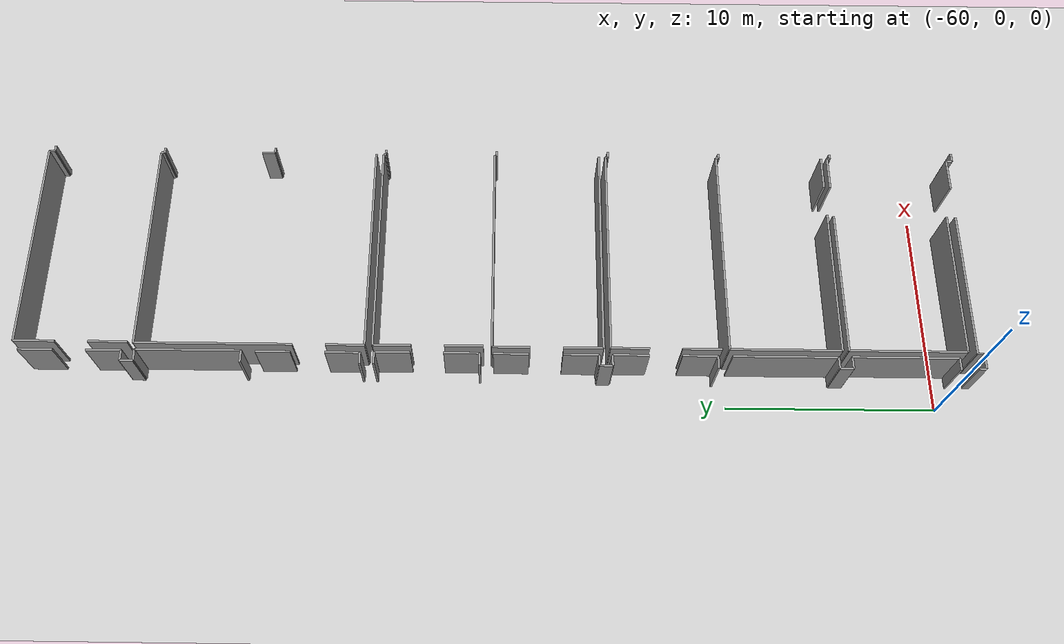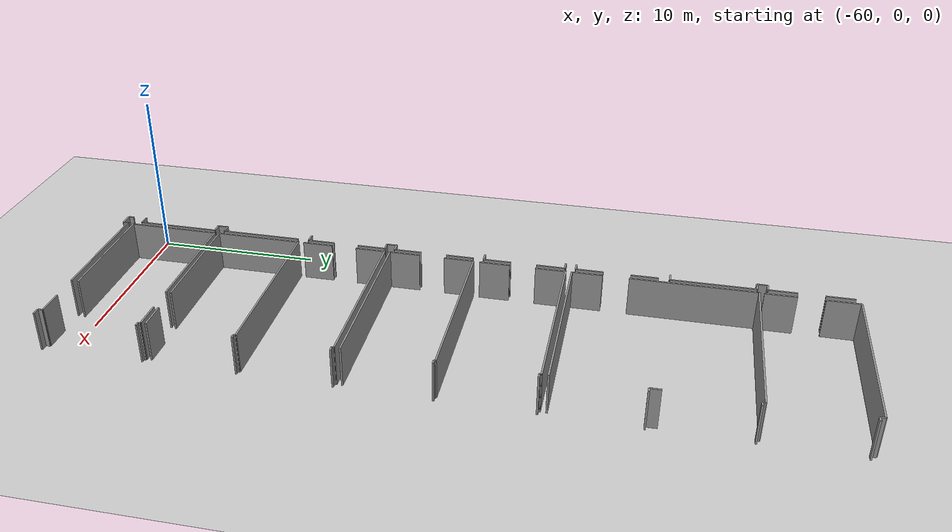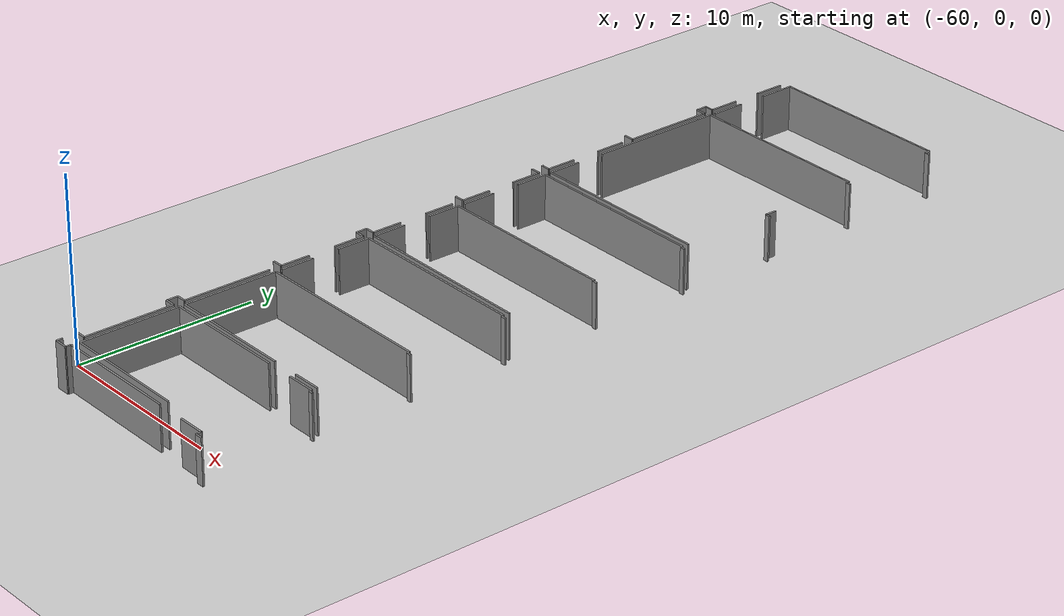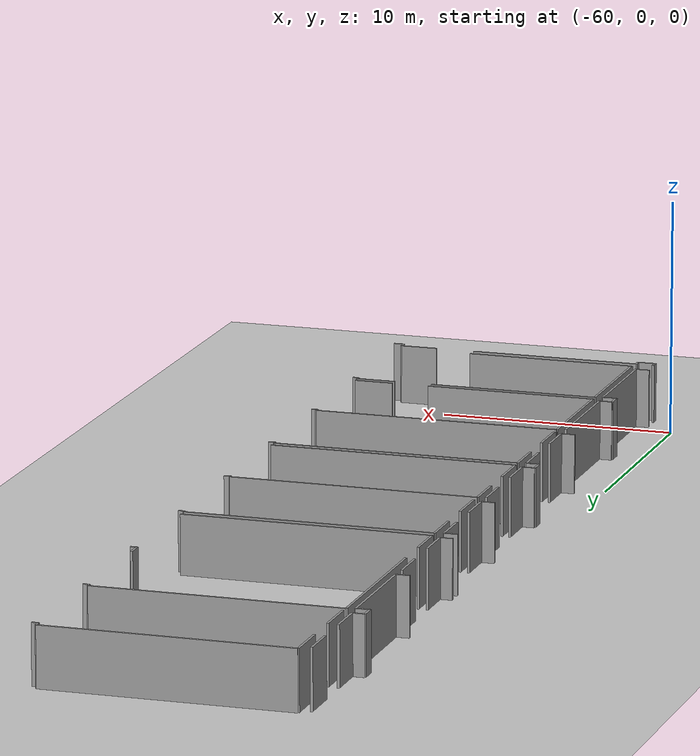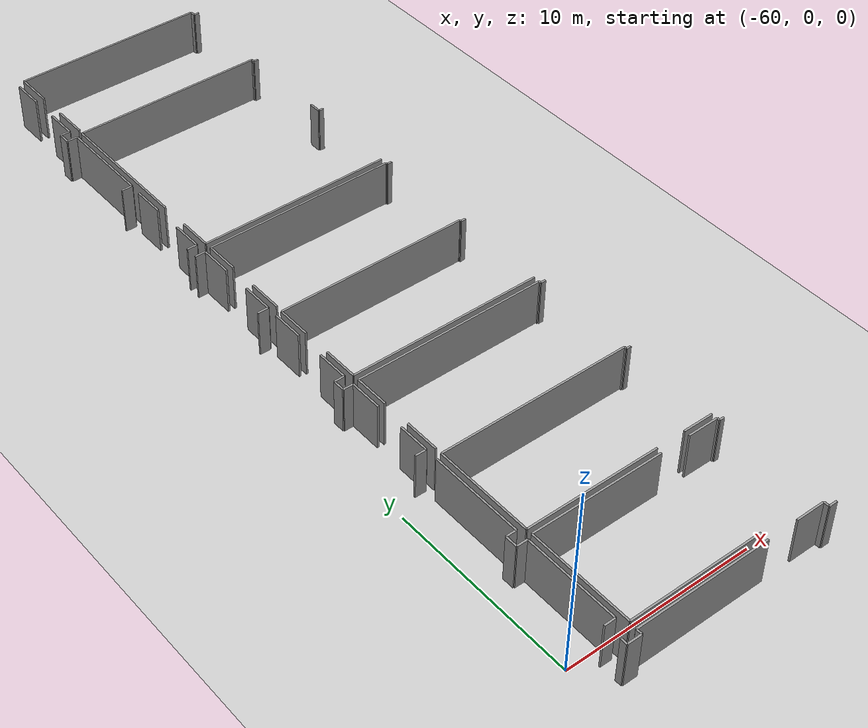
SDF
<sdf version="1.6">
 <world name="default">
  <model name="ground_plane">
   <static>1</static>
   <link name="link">
    <collision name="collision">
     <geometry><plane><normal>0 0 1</normal><size>100 100</size></plane></geometry>
     <surface><friction><ode><mu>100</mu><mu2>50</mu2></ode></friction></surface>
    </collision>
    <visual name="visual">
     <cast_shadows>0</cast_shadows>
     <geometry><plane><normal>0 0 1</normal><size>100 100</size></plane></geometry>
     <material>
      <script><uri>file://media/materials/scripts/gazebo.material</uri><name>Gazebo/Grey</name></script>
     </material>
    </visual>
   </link>
  </model>
  <model name="50015848">
   <static>1</static>
   <link name="Wall_166">
    <collision name="Wall_166_Collision">
     <geometry><box><size>0.342279367456 0.1 2.5</size></box></geometry>
     <pose>0.171139683728 0 1.25 0 0 0</pose>
    </collision>
    <visual name="Wall_166_Visual">
     <pose>0.171139683728 0 1.25 0 0 0</pose>
     <geometry><box><size>0.342279367456 0.1 2.5</size></box></geometry>
     <material>
      <script><uri>file://media/materials/scripts/gazebo.material</uri><name>Gazebo/Grey</name></script>
      <ambient>1 1 1 1</ambient>
     </material>
    </visual>
    <pose>73.0280559978 -45.2625769907 0 0 0 -1.57079632679</pose>
   </link>
   <link name="Wall_167">
    <collision name="Wall_167_Collision">
     <geometry><box><size>0.763468211026 0.1 2.5</size></box></geometry>
     <pose>0.381734105513 0 1.25 0 0 0</pose>
    </collision>
    <visual name="Wall_167_Visual">
     <pose>0.381734105513 0 1.25 0 0 0</pose>
     <geometry><box><size>0.763468211026 0.1 2.5</size></box></geometry>
     <material>
      <script><uri>file://media/materials/scripts/gazebo.material</uri><name>Gazebo/Grey</name></script>
      <ambient>1 1 1 1</ambient>
     </material>
    </visual>
    <pose>73.0280559978 -45.6048563581 0 0 0 0.0</pose>
   </link>
   <link name="Wall_168">
    <collision name="Wall_168_Collision">
     <geometry><box><size>0.303458949946 0.1 2.5</size></box></geometry>
     <pose>0.151729474973 0 1.25 0 0 0</pose>
    </collision>
    <visual name="Wall_168_Visual">
     <pose>0.151729474973 0 1.25 0 0 0</pose>
     <geometry><box><size>0.303458949946 0.1 2.5</size></box></geometry>
     <material>
      <script><uri>file://media/materials/scripts/gazebo.material</uri><name>Gazebo/Grey</name></script>
      <ambient>1 1 1 1</ambient>
     </material>
    </visual>
    <pose>73.7915242088 -45.6048563581 0 0 0 1.57079632679</pose>
   </link>
   <link name="Wall_169">
    <collision name="Wall_169_Collision">
     <geometry><box><size>7.20613514834 0.1 2.5</size></box></geometry>
     <pose>3.60306757417 0 1.25 0 0 0</pose>
    </collision>
    <visual name="Wall_169_Visual">
     <pose>3.60306757417 0 1.25 0 0 0</pose>
     <geometry><box><size>7.20613514834 0.1 2.5</size></box></geometry>
     <material>
      <script><uri>file://media/materials/scripts/gazebo.material</uri><name>Gazebo/Grey</name></script>
      <ambient>1 1 1 1</ambient>
     </material>
    </visual>
    <pose>73.7915242088 -45.3013974082 0 0 0 0.0</pose>
   </link>
   <link name="Wall_170">
    <collision name="Wall_170_Collision">
     <geometry><box><size>1.56423447025 0.1 2.5</size></box></geometry>
     <pose>0.782117235124 0 1.25 0 0 0</pose>
    </collision>
    <visual name="Wall_170_Visual">
     <pose>0.782117235124 0 1.25 0 0 0</pose>
     <geometry><box><size>1.56423447025 0.1 2.5</size></box></geometry>
     <material>
      <script><uri>file://media/materials/scripts/gazebo.material</uri><name>Gazebo/Grey</name></script>
      <ambient>1 1 1 1</ambient>
     </material>
    </visual>
    <pose>82.6392809342 -45.3013974082 0 0 0 0.0</pose>
   </link>
   <link name="Wall_171">
    <collision name="Wall_171_Collision">
     <geometry><box><size>0.291279995433 0.1 2.5</size></box></geometry>
     <pose>0.145639997716 0 1.25 0 0 0</pose>
    </collision>
    <visual name="Wall_171_Visual">
     <pose>0.145639997716 0 1.25 0 0 0</pose>
     <geometry><box><size>0.291279995433 0.1 2.5</size></box></geometry>
     <material>
      <script><uri>file://media/materials/scripts/gazebo.material</uri><name>Gazebo/Grey</name></script>
      <ambient>1 1 1 1</ambient>
     </material>
    </visual>
    <pose>84.2035154045 -45.3013974082 0 0 0 -1.57079632679</pose>
   </link>
   <link name="Wall_172">
    <collision name="Wall_172_Collision">
     <geometry><box><size>0.438949818901 0.1 2.5</size></box></geometry>
     <pose>0.219474909451 0 1.25 0 0 0</pose>
    </collision>
    <visual name="Wall_172_Visual">
     <pose>0.219474909451 0 1.25 0 0 0</pose>
     <geometry><box><size>0.438949818901 0.1 2.5</size></box></geometry>
     <material>
      <script><uri>file://media/materials/scripts/gazebo.material</uri><name>Gazebo/Grey</name></script>
      <ambient>1 1 1 1</ambient>
     </material>
    </visual>
    <pose>84.2035154045 -45.5926774036 0 0 0 0.0</pose>
   </link>
   <link name="Wall_177">
    <collision name="Wall_177_Collision">
     <geometry><box><size>0.59169420675 0.1 2.5</size></box></geometry>
     <pose>0.295847103375 0 1.25 0 0 0</pose>
    </collision>
    <visual name="Wall_177_Visual">
     <pose>0.295847103375 0 1.25 0 0 0</pose>
     <geometry><box><size>0.59169420675 0.1 2.5</size></box></geometry>
     <material>
      <script><uri>file://media/materials/scripts/gazebo.material</uri><name>Gazebo/Grey</name></script>
      <ambient>1 1 1 1</ambient>
     </material>
    </visual>
    <pose>73.5489600315 -44.4285723347 0 0 0 3.14159265359</pose>
   </link>
   <link name="Wall_231">
    <collision name="Wall_231_Collision">
     <geometry><box><size>1.66826304004 0.1 2.5</size></box></geometry>
     <pose>0.834131520022 0 1.25 0 0 0</pose>
    </collision>
    <visual name="Wall_231_Visual">
     <pose>0.834131520022 0 1.25 0 0 0</pose>
     <geometry><box><size>1.66826304004 0.1 2.5</size></box></geometry>
     <material>
      <script><uri>file://media/materials/scripts/gazebo.material</uri><name>Gazebo/Grey</name></script>
      <ambient>1 1 1 1</ambient>
     </material>
    </visual>
    <pose>73.476647489 -0.312846894049 0 0 0 -1.57079632679</pose>
   </link>
   <link name="Wall_232">
    <collision name="Wall_232_Collision">
     <geometry><box><size>1.67485997374 0.1 2.5</size></box></geometry>
     <pose>0.83742998687 0 1.25 0 0 0</pose>
    </collision>
    <visual name="Wall_232_Visual">
     <pose>0.83742998687 0 1.25 0 0 0</pose>
     <geometry><box><size>1.67485997374 0.1 2.5</size></box></geometry>
     <material>
      <script><uri>file://media/materials/scripts/gazebo.material</uri><name>Gazebo/Grey</name></script>
      <ambient>1 1 1 1</ambient>
     </material>
    </visual>
    <pose>73.476647489 -3.52682224435 0 0 0 -1.57079632679</pose>
   </link>
   <link name="Wall_233">
    <collision name="Wall_233_Collision">
     <geometry><box><size>0.507963894474 0.1 2.5</size></box></geometry>
     <pose>0.253981947237 0 1.25 0 0 0</pose>
    </collision>
    <visual name="Wall_233_Visual">
     <pose>0.253981947237 0 1.25 0 0 0</pose>
     <geometry><box><size>0.507963894474 0.1 2.5</size></box></geometry>
     <material>
      <script><uri>file://media/materials/scripts/gazebo.material</uri><name>Gazebo/Grey</name></script>
      <ambient>1 1 1 1</ambient>
     </material>
    </visual>
    <pose>73.476647489 -5.20168221809 0 0 0 3.14159265359</pose>
   </link>
   <link name="Wall_234">
    <collision name="Wall_234_Collision">
     <geometry><box><size>0.623917690566 0.1 2.5</size></box></geometry>
     <pose>0.311958845283 0 1.25 0 0 0</pose>
    </collision>
    <visual name="Wall_234_Visual">
     <pose>0.311958845283 0 1.25 0 0 0</pose>
     <geometry><box><size>0.623917690566 0.1 2.5</size></box></geometry>
     <material>
      <script><uri>file://media/materials/scripts/gazebo.material</uri><name>Gazebo/Grey</name></script>
      <ambient>1 1 1 1</ambient>
     </material>
    </visual>
    <pose>72.9686835946 -5.20168221809 0 0 0 -1.57079632679</pose>
   </link>
   <link name="Wall_235">
    <collision name="Wall_235_Collision">
     <geometry><box><size>0.565813928411 0.1 2.5</size></box></geometry>
     <pose>0.282906964205 0 1.25 0 0 0</pose>
    </collision>
    <visual name="Wall_235_Visual">
     <pose>0.282906964205 0 1.25 0 0 0</pose>
     <geometry><box><size>0.565813928411 0.1 2.5</size></box></geometry>
     <material>
      <script><uri>file://media/materials/scripts/gazebo.material</uri><name>Gazebo/Grey</name></script>
      <ambient>1 1 1 1</ambient>
     </material>
    </visual>
    <pose>72.9686835946 -5.82559990866 0 0 0 0.0</pose>
   </link>
   <link name="Wall_236">
    <collision name="Wall_236_Collision">
     <geometry><box><size>4.99032661165 0.1 2.5</size></box></geometry>
     <pose>2.49516330582 0 1.25 0 0 0</pose>
    </collision>
    <visual name="Wall_236_Visual">
     <pose>2.49516330582 0 1.25 0 0 0</pose>
     <geometry><box><size>4.99032661165 0.1 2.5</size></box></geometry>
     <material>
      <script><uri>file://media/materials/scripts/gazebo.material</uri><name>Gazebo/Grey</name></script>
      <ambient>1 1 1 1</ambient>
     </material>
    </visual>
    <pose>73.534497523 -5.82559990866 0 0 0 -1.57079632679</pose>
   </link>
   <link name="Wall_237">
    <collision name="Wall_237_Collision">
     <geometry><box><size>0.580276436895 0.1 2.5</size></box></geometry>
     <pose>0.290138218447 0 1.25 0 0 0</pose>
    </collision>
    <visual name="Wall_237_Visual">
     <pose>0.290138218447 0 1.25 0 0 0</pose>
     <geometry><box><size>0.580276436895 0.1 2.5</size></box></geometry>
     <material>
      <script><uri>file://media/materials/scripts/gazebo.material</uri><name>Gazebo/Grey</name></script>
      <ambient>1 1 1 1</ambient>
     </material>
    </visual>
    <pose>73.534497523 -10.8159265203 0 0 0 3.14159265359</pose>
   </link>
   <link name="Wall_240">
    <collision name="Wall_240_Collision">
     <geometry><box><size>1.64542750033 0.1 2.5</size></box></geometry>
     <pose>0.822713750167 0 1.25 0 0 0</pose>
    </collision>
    <visual name="Wall_240_Visual">
     <pose>0.822713750167 0 1.25 0 0 0</pose>
     <geometry><box><size>1.64542750033 0.1 2.5</size></box></geometry>
     <material>
      <script><uri>file://media/materials/scripts/gazebo.material</uri><name>Gazebo/Grey</name></script>
      <ambient>1 1 1 1</ambient>
     </material>
    </visual>
    <pose>73.4946621926 -11.4827242799 0 0 0 -1.57079632679</pose>
   </link>
   <link name="Wall_241">
    <collision name="Wall_241_Collision">
     <geometry><box><size>1.65253189047 0.1 2.5</size></box></geometry>
     <pose>0.826265945233 0 1.25 0 0 0</pose>
    </collision>
    <visual name="Wall_241_Visual">
     <pose>0.826265945233 0 1.25 0 0 0</pose>
     <geometry><box><size>1.65253189047 0.1 2.5</size></box></geometry>
     <material>
      <script><uri>file://media/materials/scripts/gazebo.material</uri><name>Gazebo/Grey</name></script>
      <ambient>1 1 1 1</ambient>
     </material>
    </visual>
    <pose>73.4946621926 -14.7423707096 0 0 0 -1.57079632679</pose>
   </link>
   <link name="Wall_242">
    <collision name="Wall_242_Collision">
     <geometry><box><size>0.530799434186 0.1 2.5</size></box></geometry>
     <pose>0.265399717093 0 1.25 0 0 0</pose>
    </collision>
    <visual name="Wall_242_Visual">
     <pose>0.265399717093 0 1.25 0 0 0</pose>
     <geometry><box><size>0.530799434186 0.1 2.5</size></box></geometry>
     <material>
      <script><uri>file://media/materials/scripts/gazebo.material</uri><name>Gazebo/Grey</name></script>
      <ambient>1 1 1 1</ambient>
     </material>
    </visual>
    <pose>73.4946621926 -16.3949026001 0 0 0 3.14159265359</pose>
   </link>
   <link name="Wall_244">
    <collision name="Wall_244_Collision">
     <geometry><box><size>0.567590025944 0.1 2.5</size></box></geometry>
     <pose>0.283795012972 0 1.25 0 0 0</pose>
    </collision>
    <visual name="Wall_244_Visual">
     <pose>0.283795012972 0 1.25 0 0 0</pose>
     <geometry><box><size>0.567590025944 0.1 2.5</size></box></geometry>
     <material>
      <script><uri>file://media/materials/scripts/gazebo.material</uri><name>Gazebo/Grey</name></script>
      <ambient>1 1 1 1</ambient>
     </material>
    </visual>
    <pose>72.9638627584 -17.0507900462 0 0 0 0.0</pose>
   </link>
   <link name="Wall_245">
    <collision name="Wall_245_Collision">
     <geometry><box><size>1.70048652386 0.1 2.5</size></box></geometry>
     <pose>0.85024326193 0 1.25 0 0 0</pose>
    </collision>
    <visual name="Wall_245_Visual">
     <pose>0.85024326193 0 1.25 0 0 0</pose>
     <geometry><box><size>1.70048652386 0.1 2.5</size></box></geometry>
     <material>
      <script><uri>file://media/materials/scripts/gazebo.material</uri><name>Gazebo/Grey</name></script>
      <ambient>1 1 1 1</ambient>
     </material>
    </visual>
    <pose>73.5314527844 -17.0507900462 0 0 0 -1.57079632679</pose>
   </link>
   <link name="Wall_246">
    <collision name="Wall_246_Collision">
     <geometry><box><size>1.69236722085 0.1 2.5</size></box></geometry>
     <pose>0.846183610426 0 1.25 0 0 0</pose>
    </collision>
    <visual name="Wall_246_Visual">
     <pose>0.846183610426 0 1.25 0 0 0</pose>
     <geometry><box><size>1.69236722085 0.1 2.5</size></box></geometry>
     <material>
      <script><uri>file://media/materials/scripts/gazebo.material</uri><name>Gazebo/Grey</name></script>
      <ambient>1 1 1 1</ambient>
     </material>
    </visual>
    <pose>73.5314527844 -20.3099290195 0 0 0 -1.57079632679</pose>
   </link>
   <link name="Wall_247">
    <collision name="Wall_247_Collision">
     <geometry><box><size>0.574186959638 0.1 2.5</size></box></geometry>
     <pose>0.287093479819 0 1.25 0 0 0</pose>
    </collision>
    <visual name="Wall_247_Visual">
     <pose>0.287093479819 0 1.25 0 0 0</pose>
     <geometry><box><size>0.574186959638 0.1 2.5</size></box></geometry>
     <material>
      <script><uri>file://media/materials/scripts/gazebo.material</uri><name>Gazebo/Grey</name></script>
      <ambient>1 1 1 1</ambient>
     </material>
    </visual>
    <pose>73.5314527844 -22.0022962404 0 0 0 3.14159265359</pose>
   </link>
   <link name="Wall_250">
    <collision name="Wall_250_Collision">
     <geometry><box><size>1.67815844059 0.1 2.5</size></box></geometry>
     <pose>0.839079220293 0 1.25 0 0 0</pose>
    </collision>
    <visual name="Wall_250_Visual">
     <pose>0.839079220293 0 1.25 0 0 0</pose>
     <geometry><box><size>1.67815844059 0.1 2.5</size></box></geometry>
     <material>
      <script><uri>file://media/materials/scripts/gazebo.material</uri><name>Gazebo/Grey</name></script>
      <ambient>1 1 1 1</ambient>
     </material>
    </visual>
    <pose>73.5164828194 -22.6386466137 0 0 0 -1.57079632679</pose>
   </link>
   <link name="Wall_251">
    <collision name="Wall_251_Collision">
     <geometry><box><size>1.69744178523 0.1 2.5</size></box></geometry>
     <pose>0.848720892616 0 1.25 0 0 0</pose>
    </collision>
    <visual name="Wall_251_Visual">
     <pose>0.848720892616 0 1.25 0 0 0</pose>
     <geometry><box><size>1.69744178523 0.1 2.5</size></box></geometry>
     <material>
      <script><uri>file://media/materials/scripts/gazebo.material</uri><name>Gazebo/Grey</name></script>
      <ambient>1 1 1 1</ambient>
     </material>
    </visual>
    <pose>73.5164828194 -25.9031138796 0 0 0 -1.57079632679</pose>
   </link>
   <link name="Wall_252">
    <collision name="Wall_252_Collision">
     <geometry><box><size>0.533082988157 0.1 2.5</size></box></geometry>
     <pose>0.266541494079 0 1.25 0 0 0</pose>
    </collision>
    <visual name="Wall_252_Visual">
     <pose>0.266541494079 0 1.25 0 0 0</pose>
     <geometry><box><size>0.533082988157 0.1 2.5</size></box></geometry>
     <material>
      <script><uri>file://media/materials/scripts/gazebo.material</uri><name>Gazebo/Grey</name></script>
      <ambient>1 1 1 1</ambient>
     </material>
    </visual>
    <pose>73.5164828194 -27.6005556648 0 0 0 3.14159265359</pose>
   </link>
   <link name="Wall_253">
    <collision name="Wall_253_Collision">
     <geometry><box><size>0.623663962347 0.1 2.5</size></box></geometry>
     <pose>0.311831981173 0 1.25 0 0 0</pose>
    </collision>
    <visual name="Wall_253_Visual">
     <pose>0.311831981173 0 1.25 0 0 0</pose>
     <geometry><box><size>0.623663962347 0.1 2.5</size></box></geometry>
     <material>
      <script><uri>file://media/materials/scripts/gazebo.material</uri><name>Gazebo/Grey</name></script>
      <ambient>1 1 1 1</ambient>
     </material>
    </visual>
    <pose>72.9833998313 -27.6005556648 0 0 0 -1.57079632679</pose>
   </link>
   <link name="Wall_254">
    <collision name="Wall_254_Collision">
     <geometry><box><size>0.536635183224 0.1 2.5</size></box></geometry>
     <pose>0.268317591612 0 1.25 0 0 0</pose>
    </collision>
    <visual name="Wall_254_Visual">
     <pose>0.268317591612 0 1.25 0 0 0</pose>
     <geometry><box><size>0.536635183224 0.1 2.5</size></box></geometry>
     <material>
      <script><uri>file://media/materials/scripts/gazebo.material</uri><name>Gazebo/Grey</name></script>
      <ambient>1 1 1 1</ambient>
     </material>
    </visual>
    <pose>72.9833998313 -28.2242196271 0 0 0 0.0</pose>
   </link>
   <link name="Wall_255">
    <collision name="Wall_255_Collision">
     <geometry><box><size>1.73093391014 0.1 2.5</size></box></geometry>
     <pose>0.865466955071 0 1.25 0 0 0</pose>
    </collision>
    <visual name="Wall_255_Visual">
     <pose>0.865466955071 0 1.25 0 0 0</pose>
     <geometry><box><size>1.73093391014 0.1 2.5</size></box></geometry>
     <material>
      <script><uri>file://media/materials/scripts/gazebo.material</uri><name>Gazebo/Grey</name></script>
      <ambient>1 1 1 1</ambient>
     </material>
    </visual>
    <pose>73.5200350145 -28.2242196271 0 0 0 -1.57079632679</pose>
   </link>
   <link name="Wall_256">
    <collision name="Wall_256_Collision">
     <geometry><box><size>1.66115864991 0.1 2.5</size></box></geometry>
     <pose>0.830579324956 0 1.25 0 0 0</pose>
    </collision>
    <visual name="Wall_256_Visual">
     <pose>0.830579324956 0 1.25 0 0 0</pose>
     <geometry><box><size>1.66115864991 0.1 2.5</size></box></geometry>
     <material>
      <script><uri>file://media/materials/scripts/gazebo.material</uri><name>Gazebo/Grey</name></script>
      <ambient>1 1 1 1</ambient>
     </material>
    </visual>
    <pose>73.5200350145 -31.4947763703 0 0 0 -1.57079632679</pose>
   </link>
   <link name="Wall_257">
    <collision name="Wall_257_Collision">
     <geometry><box><size>0.594231488941 0.1 2.5</size></box></geometry>
     <pose>0.29711574447 0 1.25 0 0 0</pose>
    </collision>
    <visual name="Wall_257_Visual">
     <pose>0.29711574447 0 1.25 0 0 0</pose>
     <geometry><box><size>0.594231488941 0.1 2.5</size></box></geometry>
     <material>
      <script><uri>file://media/materials/scripts/gazebo.material</uri><name>Gazebo/Grey</name></script>
      <ambient>1 1 1 1</ambient>
     </material>
    </visual>
    <pose>73.5200350145 -33.1559350202 0 0 0 3.14159265359</pose>
   </link>
   <link name="Wall_260">
    <collision name="Wall_260_Collision">
     <geometry><box><size>4.94440180401 0.1 2.5</size></box></geometry>
     <pose>2.472200902 0 1.25 0 0 0</pose>
    </collision>
    <visual name="Wall_260_Visual">
     <pose>2.472200902 0 1.25 0 0 0</pose>
     <geometry><box><size>4.94440180401 0.1 2.5</size></box></geometry>
     <material>
      <script><uri>file://media/materials/scripts/gazebo.material</uri><name>Gazebo/Grey</name></script>
      <ambient>1 1 1 1</ambient>
     </material>
    </visual>
    <pose>73.5187663734 -33.8410012116 0 0 0 -1.57079632679</pose>
   </link>
   <link name="Wall_261">
    <collision name="Wall_261_Collision">
     <geometry><box><size>0.550082778831 0.1 2.5</size></box></geometry>
     <pose>0.275041389416 0 1.25 0 0 0</pose>
    </collision>
    <visual name="Wall_261_Visual">
     <pose>0.275041389416 0 1.25 0 0 0</pose>
     <geometry><box><size>0.550082778831 0.1 2.5</size></box></geometry>
     <material>
      <script><uri>file://media/materials/scripts/gazebo.material</uri><name>Gazebo/Grey</name></script>
      <ambient>1 1 1 1</ambient>
     </material>
    </visual>
    <pose>73.5187663734 -38.7854030156 0 0 0 3.14159265359</pose>
   </link>
   <link name="Wall_262">
    <collision name="Wall_262_Collision">
     <geometry><box><size>0.63838019905 0.1 2.5</size></box></geometry>
     <pose>0.319190099525 0 1.25 0 0 0</pose>
    </collision>
    <visual name="Wall_262_Visual">
     <pose>0.319190099525 0 1.25 0 0 0</pose>
     <geometry><box><size>0.63838019905 0.1 2.5</size></box></geometry>
     <material>
      <script><uri>file://media/materials/scripts/gazebo.material</uri><name>Gazebo/Grey</name></script>
      <ambient>1 1 1 1</ambient>
     </material>
    </visual>
    <pose>72.9686835946 -38.7854030156 0 0 0 -1.57079632679</pose>
   </link>
   <link name="Wall_263">
    <collision name="Wall_263_Collision">
     <geometry><box><size>0.580276436895 0.1 2.5</size></box></geometry>
     <pose>0.290138218447 0 1.25 0 0 0</pose>
    </collision>
    <visual name="Wall_263_Visual">
     <pose>0.290138218447 0 1.25 0 0 0</pose>
     <geometry><box><size>0.580276436895 0.1 2.5</size></box></geometry>
     <material>
      <script><uri>file://media/materials/scripts/gazebo.material</uri><name>Gazebo/Grey</name></script>
      <ambient>1 1 1 1</ambient>
     </material>
    </visual>
    <pose>72.9686835946 -39.4237832146 0 0 0 0.0</pose>
   </link>
   <link name="Wall_264">
    <collision name="Wall_264_Collision">
     <geometry><box><size>5.00478912013 0.1 2.5</size></box></geometry>
     <pose>2.50239456007 0 1.25 0 0 0</pose>
    </collision>
    <visual name="Wall_264_Visual">
     <pose>2.50239456007 0 1.25 0 0 0</pose>
     <geometry><box><size>5.00478912013 0.1 2.5</size></box></geometry>
     <material>
      <script><uri>file://media/materials/scripts/gazebo.material</uri><name>Gazebo/Grey</name></script>
      <ambient>1 1 1 1</ambient>
     </material>
    </visual>
    <pose>73.5489600315 -39.4237832146 0 0 0 -1.57079632679</pose>
   </link>
   <link name="Wall_357">
    <collision name="Wall_357_Collision">
     <geometry><box><size>7.15488204809 0.1 2.5</size></box></geometry>
     <pose>3.57744102405 0 1.25 0 0 0</pose>
    </collision>
    <visual name="Wall_357_Visual">
     <pose>3.57744102405 0 1.25 0 0 0</pose>
     <geometry><box><size>7.15488204809 0.1 2.5</size></box></geometry>
     <material>
      <script><uri>file://media/materials/scripts/gazebo.material</uri><name>Gazebo/Grey</name></script>
      <ambient>1 1 1 1</ambient>
     </material>
    </visual>
    <pose>81.0230321791 -44.8736116309 0 0 0 3.14159265359</pose>
   </link>
   <link name="Wall_358">
    <collision name="Wall_358_Collision">
     <geometry><box><size>5.5660359406 0.1 2.5</size></box></geometry>
     <pose>2.7830179703 0 1.25 0 0 0</pose>
    </collision>
    <visual name="Wall_358_Visual">
     <pose>2.7830179703 0 1.25 0 0 0</pose>
     <geometry><box><size>5.5660359406 0.1 2.5</size></box></geometry>
     <material>
      <script><uri>file://media/materials/scripts/gazebo.material</uri><name>Gazebo/Grey</name></script>
      <ambient>1 1 1 1</ambient>
     </material>
    </visual>
    <pose>73.868150131 -44.8736116309 0 0 0 1.57079632679</pose>
   </link>
   <link name="Wall_359">
    <collision name="Wall_359_Collision">
     <geometry><box><size>7.14041953961 0.1 2.5</size></box></geometry>
     <pose>3.57020976981 0 1.25 0 0 0</pose>
    </collision>
    <visual name="Wall_359_Visual">
     <pose>3.57020976981 0 1.25 0 0 0</pose>
     <geometry><box><size>7.14041953961 0.1 2.5</size></box></geometry>
     <material>
      <script><uri>file://media/materials/scripts/gazebo.material</uri><name>Gazebo/Grey</name></script>
      <ambient>1 1 1 1</ambient>
     </material>
    </visual>
    <pose>73.868150131 -39.3075756903 0 0 0 0.0</pose>
   </link>
   <link name="Wall_360">
    <collision name="Wall_360_Collision">
     <geometry><box><size>1.65253189047 0.1 2.5</size></box></geometry>
     <pose>0.826265945233 0 1.25 0 0 0</pose>
    </collision>
    <visual name="Wall_360_Visual">
     <pose>0.826265945233 0 1.25 0 0 0</pose>
     <geometry><box><size>1.65253189047 0.1 2.5</size></box></geometry>
     <material>
      <script><uri>file://media/materials/scripts/gazebo.material</uri><name>Gazebo/Grey</name></script>
      <ambient>1 1 1 1</ambient>
     </material>
    </visual>
    <pose>82.6141618405 -39.3075756903 0 0 0 0.0</pose>
   </link>
   <link name="Wall_361">
    <collision name="Wall_361_Collision">
     <geometry><box><size>0.147162367031 0.1 2.5</size></box></geometry>
     <pose>0.0735811835153 0 1.25 0 0 0</pose>
    </collision>
    <visual name="Wall_361_Visual">
     <pose>0.0735811835153 0 1.25 0 0 0</pose>
     <geometry><box><size>0.147162367031 0.1 2.5</size></box></geometry>
     <material>
      <script><uri>file://media/materials/scripts/gazebo.material</uri><name>Gazebo/Grey</name></script>
      <ambient>1 1 1 1</ambient>
     </material>
    </visual>
    <pose>84.266693731 -39.3075756903 0 0 0 -1.57079632679</pose>
   </link>
   <link name="Wall_362">
    <collision name="Wall_362_Collision">
     <geometry><box><size>0.252205849704 0.1 2.5</size></box></geometry>
     <pose>0.126102924852 0 1.25 0 0 0</pose>
    </collision>
    <visual name="Wall_362_Visual">
     <pose>0.126102924852 0 1.25 0 0 0</pose>
     <geometry><box><size>0.252205849704 0.1 2.5</size></box></geometry>
     <material>
      <script><uri>file://media/materials/scripts/gazebo.material</uri><name>Gazebo/Grey</name></script>
      <ambient>1 1 1 1</ambient>
     </material>
    </visual>
    <pose>84.266693731 -39.4547380573 0 0 0 0.0</pose>
   </link>
   <link name="Wall_365">
    <collision name="Wall_365_Collision">
     <geometry><box><size>1.64009920773 0.1 2.5</size></box></geometry>
     <pose>0.820049603867 0 1.25 0 0 0</pose>
    </collision>
    <visual name="Wall_365_Visual">
     <pose>0.820049603867 0 1.25 0 0 0</pose>
     <geometry><box><size>1.64009920773 0.1 2.5</size></box></geometry>
     <material>
      <script><uri>file://media/materials/scripts/gazebo.material</uri><name>Gazebo/Grey</name></script>
      <ambient>1 1 1 1</ambient>
     </material>
    </visual>
    <pose>84.2697384696 -39.0031018275 0 0 0 3.14159265359</pose>
   </link>
   <link name="Wall_366">
    <collision name="Wall_366_Collision">
     <geometry><box><size>7.19218009629 0.1 2.5</size></box></geometry>
     <pose>3.59609004814 0 1.25 0 0 0</pose>
    </collision>
    <visual name="Wall_366_Visual">
     <pose>3.59609004814 0 1.25 0 0 0</pose>
     <geometry><box><size>7.19218009629 0.1 2.5</size></box></geometry>
     <material>
      <script><uri>file://media/materials/scripts/gazebo.material</uri><name>Gazebo/Grey</name></script>
      <ambient>1 1 1 1</ambient>
     </material>
    </visual>
    <pose>81.0560168476 -39.0031018275 0 0 0 3.14159265359</pose>
   </link>
   <link name="Wall_367">
    <collision name="Wall_367_Collision">
     <geometry><box><size>5.28591998681 0.1 2.5</size></box></geometry>
     <pose>2.6429599934 0 1.25 0 0 0</pose>
    </collision>
    <visual name="Wall_367_Visual">
     <pose>2.6429599934 0 1.25 0 0 0</pose>
     <geometry><box><size>5.28591998681 0.1 2.5</size></box></geometry>
     <material>
      <script><uri>file://media/materials/scripts/gazebo.material</uri><name>Gazebo/Grey</name></script>
      <ambient>1 1 1 1</ambient>
     </material>
    </visual>
    <pose>73.8638367513 -39.0031018275 0 0 0 1.57079632679</pose>
   </link>
   <link name="Wall_368">
    <collision name="Wall_368_Collision">
     <geometry><box><size>10.3889019277 0.1 2.5</size></box></geometry>
     <pose>5.19445096385 0 1.25 0 0 0</pose>
    </collision>
    <visual name="Wall_368_Visual">
     <pose>5.19445096385 0 1.25 0 0 0</pose>
     <geometry><box><size>10.3889019277 0.1 2.5</size></box></geometry>
     <material>
      <script><uri>file://media/materials/scripts/gazebo.material</uri><name>Gazebo/Grey</name></script>
      <ambient>1 1 1 1</ambient>
     </material>
    </visual>
    <pose>73.8638367513 -33.7171818407 0 0 0 0.0</pose>
   </link>
   <link name="Wall_369">
    <collision name="Wall_369_Collision">
     <geometry><box><size>0.137266966489 0.1 2.5</size></box></geometry>
     <pose>0.0686334832444 0 1.25 0 0 0</pose>
    </collision>
    <visual name="Wall_369_Visual">
     <pose>0.0686334832444 0 1.25 0 0 0</pose>
     <geometry><box><size>0.137266966489 0.1 2.5</size></box></geometry>
     <material>
      <script><uri>file://media/materials/scripts/gazebo.material</uri><name>Gazebo/Grey</name></script>
      <ambient>1 1 1 1</ambient>
     </material>
    </visual>
    <pose>84.252738679 -33.7171818407 0 0 0 -1.57079632679</pose>
   </link>
   <link name="Wall_370">
    <collision name="Wall_370_Collision">
     <geometry><box><size>0.245355187791 0.1 2.5</size></box></geometry>
     <pose>0.122677593895 0 1.25 0 0 0</pose>
    </collision>
    <visual name="Wall_370_Visual">
     <pose>0.122677593895 0 1.25 0 0 0</pose>
     <geometry><box><size>0.245355187791 0.1 2.5</size></box></geometry>
     <material>
      <script><uri>file://media/materials/scripts/gazebo.material</uri><name>Gazebo/Grey</name></script>
      <ambient>1 1 1 1</ambient>
     </material>
    </visual>
    <pose>84.252738679 -33.8544488072 0 0 0 0.0</pose>
   </link>
   <link name="Wall_374">
    <collision name="Wall_374_Collision">
     <geometry><box><size>1.86008157362 0.1 2.5</size></box></geometry>
     <pose>0.930040786811 0 1.25 0 0 0</pose>
    </collision>
    <visual name="Wall_374_Visual">
     <pose>0.930040786811 0 1.25 0 0 0</pose>
     <geometry><box><size>1.86008157362 0.1 2.5</size></box></geometry>
     <material>
      <script><uri>file://media/materials/scripts/gazebo.material</uri><name>Gazebo/Grey</name></script>
      <ambient>1 1 1 1</ambient>
     </material>
    </visual>
    <pose>73.8638367513 -33.3738875603 0 0 0 1.57079632679</pose>
   </link>
   <link name="Wall_375">
    <collision name="Wall_375_Collision">
     <geometry><box><size>1.83191774131 0.1 2.5</size></box></geometry>
     <pose>0.915958870656 0 1.25 0 0 0</pose>
    </collision>
    <visual name="Wall_375_Visual">
     <pose>0.915958870656 0 1.25 0 0 0</pose>
     <geometry><box><size>1.83191774131 0.1 2.5</size></box></geometry>
     <material>
      <script><uri>file://media/materials/scripts/gazebo.material</uri><name>Gazebo/Grey</name></script>
      <ambient>1 1 1 1</ambient>
     </material>
    </visual>
    <pose>73.8638367513 -29.9772278923 0 0 0 1.57079632679</pose>
   </link>
   <link name="Wall_376">
    <collision name="Wall_376_Collision">
     <geometry><box><size>10.3752006039 0.1 2.5</size></box></geometry>
     <pose>5.18760030194 0 1.25 0 0 0</pose>
    </collision>
    <visual name="Wall_376_Visual">
     <pose>5.18760030194 0 1.25 0 0 0</pose>
     <geometry><box><size>10.3752006039 0.1 2.5</size></box></geometry>
     <material>
      <script><uri>file://media/materials/scripts/gazebo.material</uri><name>Gazebo/Grey</name></script>
      <ambient>1 1 1 1</ambient>
     </material>
    </visual>
    <pose>73.8638367513 -28.145310151 0 0 0 0.0</pose>
   </link>
   <link name="Wall_377">
    <collision name="Wall_377_Collision">
     <geometry><box><size>0.120774632253 0.1 2.5</size></box></geometry>
     <pose>0.0603873161263 0 1.25 0 0 0</pose>
    </collision>
    <visual name="Wall_377_Visual">
     <pose>0.0603873161263 0 1.25 0 0 0</pose>
     <geometry><box><size>0.120774632253 0.1 2.5</size></box></geometry>
     <material>
      <script><uri>file://media/materials/scripts/gazebo.material</uri><name>Gazebo/Grey</name></script>
      <ambient>1 1 1 1</ambient>
     </material>
    </visual>
    <pose>84.2390373551 -28.145310151 0 0 0 -1.57079632679</pose>
   </link>
   <link name="Wall_378">
    <collision name="Wall_378_Collision">
     <geometry><box><size>0.276056302292 0.1 2.5</size></box></geometry>
     <pose>0.138028151146 0 1.25 0 0 0</pose>
    </collision>
    <visual name="Wall_378_Visual">
     <pose>0.138028151146 0 1.25 0 0 0</pose>
     <geometry><box><size>0.276056302292 0.1 2.5</size></box></geometry>
     <material>
      <script><uri>file://media/materials/scripts/gazebo.material</uri><name>Gazebo/Grey</name></script>
      <ambient>1 1 1 1</ambient>
     </material>
    </visual>
    <pose>84.2390373551 -28.2660847833 0 0 0 0.0</pose>
   </link>
   <link name="Wall_381">
    <collision name="Wall_381_Collision">
     <geometry><box><size>10.3987973282 0.1 2.5</size></box></geometry>
     <pose>5.19939866412 0 1.25 0 0 0</pose>
    </collision>
    <visual name="Wall_381_Visual">
     <pose>5.19939866412 0 1.25 0 0 0</pose>
     <geometry><box><size>10.3987973282 0.1 2.5</size></box></geometry>
     <material>
      <script><uri>file://media/materials/scripts/gazebo.material</uri><name>Gazebo/Grey</name></script>
      <ambient>1 1 1 1</ambient>
     </material>
    </visual>
    <pose>84.2555296894 -27.8050606093 0 0 0 3.14159265359</pose>
   </link>
   <link name="Wall_382">
    <collision name="Wall_382_Collision">
     <geometry><box><size>1.87555899498 0.1 2.5</size></box></geometry>
     <pose>0.937779497491 0 1.25 0 0 0</pose>
    </collision>
    <visual name="Wall_382_Visual">
     <pose>0.937779497491 0 1.25 0 0 0</pose>
     <geometry><box><size>1.87555899498 0.1 2.5</size></box></geometry>
     <material>
      <script><uri>file://media/materials/scripts/gazebo.material</uri><name>Gazebo/Grey</name></script>
      <ambient>1 1 1 1</ambient>
     </material>
    </visual>
    <pose>73.8567323611 -27.8050606093 0 0 0 1.57079632679</pose>
   </link>
   <link name="Wall_383">
    <collision name="Wall_383_Collision">
     <geometry><box><size>1.81339558132 0.1 2.5</size></box></geometry>
     <pose>0.906697790662 0 1.25 0 0 0</pose>
    </collision>
    <visual name="Wall_383_Visual">
     <pose>0.906697790662 0 1.25 0 0 0</pose>
     <geometry><box><size>1.81339558132 0.1 2.5</size></box></geometry>
     <material>
      <script><uri>file://media/materials/scripts/gazebo.material</uri><name>Gazebo/Grey</name></script>
      <ambient>1 1 1 1</ambient>
     </material>
    </visual>
    <pose>73.8567323611 -24.3799833808 0 0 0 1.57079632679</pose>
   </link>
   <link name="Wall_384">
    <collision name="Wall_384_Collision">
     <geometry><box><size>10.3850960044 0.1 2.5</size></box></geometry>
     <pose>5.19254800221 0 1.25 0 0 0</pose>
    </collision>
    <visual name="Wall_384_Visual">
     <pose>5.19254800221 0 1.25 0 0 0</pose>
     <geometry><box><size>10.3850960044 0.1 2.5</size></box></geometry>
     <material>
      <script><uri>file://media/materials/scripts/gazebo.material</uri><name>Gazebo/Grey</name></script>
      <ambient>1 1 1 1</ambient>
     </material>
    </visual>
    <pose>73.8567323611 -22.5665877995 0 0 0 0.0</pose>
   </link>
   <link name="Wall_385">
    <collision name="Wall_385_Collision">
     <geometry><box><size>0.0857601380282 0.1 2.5</size></box></geometry>
     <pose>0.0428800690141 0 1.25 0 0 0</pose>
    </collision>
    <visual name="Wall_385_Visual">
     <pose>0.0428800690141 0 1.25 0 0 0</pose>
     <geometry><box><size>0.0857601380282 0.1 2.5</size></box></geometry>
     <material>
      <script><uri>file://media/materials/scripts/gazebo.material</uri><name>Gazebo/Grey</name></script>
      <ambient>1 1 1 1</ambient>
     </material>
    </visual>
    <pose>84.2418283655 -22.5665877995 0 0 0 -1.57079632679</pose>
   </link>
   <link name="Wall_386">
    <collision name="Wall_386_Collision">
     <geometry><box><size>0.27656375873 0.1 2.5</size></box></geometry>
     <pose>0.138281879365 0 1.25 0 0 0</pose>
    </collision>
    <visual name="Wall_386_Visual">
     <pose>0.138281879365 0 1.25 0 0 0</pose>
     <geometry><box><size>0.27656375873 0.1 2.5</size></box></geometry>
     <material>
      <script><uri>file://media/materials/scripts/gazebo.material</uri><name>Gazebo/Grey</name></script>
      <ambient>1 1 1 1</ambient>
     </material>
    </visual>
    <pose>84.2418283655 -22.6523479375 0 0 0 0.0</pose>
   </link>
   <link name="Wall_390">
    <collision name="Wall_390_Collision">
     <geometry><box><size>1.8397833161 0.1 2.5</size></box></geometry>
     <pose>0.91989165805 0 1.25 0 0 0</pose>
    </collision>
    <visual name="Wall_390_Visual">
     <pose>0.91989165805 0 1.25 0 0 0</pose>
     <geometry><box><size>1.8397833161 0.1 2.5</size></box></geometry>
     <material>
      <script><uri>file://media/materials/scripts/gazebo.material</uri><name>Gazebo/Grey</name></script>
      <ambient>1 1 1 1</ambient>
     </material>
    </visual>
    <pose>73.8894633014 -22.1748314293 0 0 0 1.57079632679</pose>
   </link>
   <link name="Wall_391">
    <collision name="Wall_391_Collision">
     <geometry><box><size>1.8184701457 0.1 2.5</size></box></geometry>
     <pose>0.909235072852 0 1.25 0 0 0</pose>
    </collision>
    <visual name="Wall_391_Visual">
     <pose>0.909235072852 0 1.25 0 0 0</pose>
     <geometry><box><size>1.8184701457 0.1 2.5</size></box></geometry>
     <material>
      <script><uri>file://media/materials/scripts/gazebo.material</uri><name>Gazebo/Grey</name></script>
      <ambient>1 1 1 1</ambient>
     </material>
    </visual>
    <pose>73.8894633014 -18.7751270227 0 0 0 1.57079632679</pose>
   </link>
   <link name="Wall_392">
    <collision name="Wall_392_Collision">
     <geometry><box><size>10.3617530083 0.1 2.5</size></box></geometry>
     <pose>5.18087650413 0 1.25 0 0 0</pose>
    </collision>
    <visual name="Wall_392_Visual">
     <pose>5.18087650413 0 1.25 0 0 0</pose>
     <geometry><box><size>10.3617530083 0.1 2.5</size></box></geometry>
     <material>
      <script><uri>file://media/materials/scripts/gazebo.material</uri><name>Gazebo/Grey</name></script>
      <ambient>1 1 1 1</ambient>
     </material>
    </visual>
    <pose>73.8894633014 -16.956656877 0 0 0 0.0</pose>
   </link>
   <link name="Wall_393">
    <collision name="Wall_393_Collision">
     <geometry><box><size>0.10605839555 0.1 2.5</size></box></geometry>
     <pose>0.0530291977748 0 1.25 0 0 0</pose>
    </collision>
    <visual name="Wall_393_Visual">
     <pose>0.0530291977748 0 1.25 0 0 0</pose>
     <geometry><box><size>0.10605839555 0.1 2.5</size></box></geometry>
     <material>
      <script><uri>file://media/materials/scripts/gazebo.material</uri><name>Gazebo/Grey</name></script>
      <ambient>1 1 1 1</ambient>
     </material>
    </visual>
    <pose>84.2512163096 -16.956656877 0 0 0 -1.57079632679</pose>
   </link>
   <link name="Wall_394">
    <collision name="Wall_394_Collision">
     <geometry><box><size>0.268444455721 0.1 2.5</size></box></geometry>
     <pose>0.134222227861 0 1.25 0 0 0</pose>
    </collision>
    <visual name="Wall_394_Visual">
     <pose>0.134222227861 0 1.25 0 0 0</pose>
     <geometry><box><size>0.268444455721 0.1 2.5</size></box></geometry>
     <material>
      <script><uri>file://media/materials/scripts/gazebo.material</uri><name>Gazebo/Grey</name></script>
      <ambient>1 1 1 1</ambient>
     </material>
    </visual>
    <pose>84.2512163096 -17.0627152725 0 0 0 0.0</pose>
   </link>
   <link name="Wall_397">
    <collision name="Wall_397_Collision">
     <geometry><box><size>10.3972749589 0.1 2.5</size></box></geometry>
     <pose>5.19863747946 0 1.25 0 0 0</pose>
    </collision>
    <visual name="Wall_397_Visual">
     <pose>5.19863747946 0 1.25 0 0 0</pose>
     <geometry><box><size>10.3972749589 0.1 2.5</size></box></geometry>
     <material>
      <script><uri>file://media/materials/scripts/gazebo.material</uri><name>Gazebo/Grey</name></script>
      <ambient>1 1 1 1</ambient>
     </material>
    </visual>
    <pose>84.2704996543 -16.585959949 0 0 0 3.14159265359</pose>
   </link>
   <link name="Wall_398">
    <collision name="Wall_398_Collision">
     <geometry><box><size>1.83141028487 0.1 2.5</size></box></geometry>
     <pose>0.915705142437 0 1.25 0 0 0</pose>
    </collision>
    <visual name="Wall_398_Visual">
     <pose>0.915705142437 0 1.25 0 0 0</pose>
     <geometry><box><size>1.83141028487 0.1 2.5</size></box></geometry>
     <material>
      <script><uri>file://media/materials/scripts/gazebo.material</uri><name>Gazebo/Grey</name></script>
      <ambient>1 1 1 1</ambient>
     </material>
    </visual>
    <pose>73.8732246954 -16.585959949 0 0 0 1.57079632679</pose>
   </link>
   <link name="Wall_399">
    <collision name="Wall_399_Collision">
     <geometry><box><size>7.47001249611 0.1 2.5</size></box></geometry>
     <pose>3.73500624806 0 1.25 0 0 0</pose>
    </collision>
    <visual name="Wall_399_Visual">
     <pose>3.73500624806 0 1.25 0 0 0</pose>
     <geometry><box><size>7.47001249611 0.1 2.5</size></box></geometry>
     <material>
      <script><uri>file://media/materials/scripts/gazebo.material</uri><name>Gazebo/Grey</name></script>
      <ambient>1 1 1 1</ambient>
     </material>
    </visual>
    <pose>73.8732246954 -13.1829570755 0 0 0 1.57079632679</pose>
   </link>
   <link name="Wall_400">
    <collision name="Wall_400_Collision">
     <geometry><box><size>10.3604843672 0.1 2.5</size></box></geometry>
     <pose>5.18024218359 0 1.25 0 0 0</pose>
    </collision>
    <visual name="Wall_400_Visual">
     <pose>5.18024218359 0 1.25 0 0 0</pose>
     <geometry><box><size>10.3604843672 0.1 2.5</size></box></geometry>
     <material>
      <script><uri>file://media/materials/scripts/gazebo.material</uri><name>Gazebo/Grey</name></script>
      <ambient>1 1 1 1</ambient>
     </material>
    </visual>
    <pose>73.8732246954 -5.71294457941 0 0 0 0.0</pose>
   </link>
   <link name="Wall_401">
    <collision name="Wall_401_Collision">
     <geometry><box><size>0.171266547837 0.1 2.5</size></box></geometry>
     <pose>0.0856332739186 0 1.25 0 0 0</pose>
    </collision>
    <visual name="Wall_401_Visual">
     <pose>0.0856332739186 0 1.25 0 0 0</pose>
     <geometry><box><size>0.171266547837 0.1 2.5</size></box></geometry>
     <material>
      <script><uri>file://media/materials/scripts/gazebo.material</uri><name>Gazebo/Grey</name></script>
      <ambient>1 1 1 1</ambient>
     </material>
    </visual>
    <pose>84.2337090625 -5.71294457941 0 0 0 -1.57079632679</pose>
   </link>
   <link name="Wall_402">
    <collision name="Wall_402_Collision">
     <geometry><box><size>0.271489194349 0.1 2.5</size></box></geometry>
     <pose>0.135744597175 0 1.25 0 0 0</pose>
    </collision>
    <visual name="Wall_402_Visual">
     <pose>0.135744597175 0 1.25 0 0 0</pose>
     <geometry><box><size>0.271489194349 0.1 2.5</size></box></geometry>
     <material>
      <script><uri>file://media/materials/scripts/gazebo.material</uri><name>Gazebo/Grey</name></script>
      <ambient>1 1 1 1</ambient>
     </material>
    </visual>
    <pose>84.2337090625 -5.88421112725 0 0 0 0.0</pose>
   </link>
   <link name="Wall_404">
    <collision name="Wall_404_Collision">
     <geometry><box><size>0.648529327811 0.1 2.5</size></box></geometry>
     <pose>0.324264663905 0 1.25 0 0 0</pose>
    </collision>
    <visual name="Wall_404_Visual">
     <pose>0.324264663905 0 1.25 0 0 0</pose>
     <geometry><box><size>0.648529327811 0.1 2.5</size></box></geometry>
     <material>
      <script><uri>file://media/materials/scripts/gazebo.material</uri><name>Gazebo/Grey</name></script>
      <ambient>1 1 1 1</ambient>
     </material>
    </visual>
    <pose>84.2798875984 -10.8151653357 0 0 0 -1.57079632679</pose>
   </link>
   <link name="Wall_405">
    <collision name="Wall_405_Collision">
     <geometry><box><size>0.27656375873 0.1 2.5</size></box></geometry>
     <pose>0.138281879365 0 1.25 0 0 0</pose>
    </collision>
    <visual name="Wall_405_Visual">
     <pose>0.138281879365 0 1.25 0 0 0</pose>
     <geometry><box><size>0.27656375873 0.1 2.5</size></box></geometry>
     <material>
      <script><uri>file://media/materials/scripts/gazebo.material</uri><name>Gazebo/Grey</name></script>
      <ambient>1 1 1 1</ambient>
     </material>
    </visual>
    <pose>84.2798875984 -11.4636946635 0 0 0 0.0</pose>
   </link>
   <link name="Wall_409">
    <collision name="Wall_409_Collision">
     <geometry><box><size>1.86693223554 0.1 2.5</size></box></geometry>
     <pose>0.933466117768 0 1.25 0 0 0</pose>
    </collision>
    <visual name="Wall_409_Visual">
     <pose>0.933466117768 0 1.25 0 0 0</pose>
     <geometry><box><size>1.86693223554 0.1 2.5</size></box></geometry>
     <material>
      <script><uri>file://media/materials/scripts/gazebo.material</uri><name>Gazebo/Grey</name></script>
      <ambient>1 1 1 1</ambient>
     </material>
    </visual>
    <pose>73.9097615589 -5.4325748974 0 0 0 1.57079632679</pose>
   </link>
   <link name="Wall_410">
    <collision name="Wall_410_Collision">
     <geometry><box><size>1.95675202507 0.1 2.5</size></box></geometry>
     <pose>0.978376012534 0 1.25 0 0 0</pose>
    </collision>
    <visual name="Wall_410_Visual">
     <pose>0.978376012534 0 1.25 0 0 0</pose>
     <geometry><box><size>1.95675202507 0.1 2.5</size></box></geometry>
     <material>
      <script><uri>file://media/materials/scripts/gazebo.material</uri><name>Gazebo/Grey</name></script>
      <ambient>1 1 1 1</ambient>
     </material>
    </visual>
    <pose>73.9097615589 -1.99278143217 0 0 0 1.57079632679</pose>
   </link>
   <link name="Wall_411">
    <collision name="Wall_411_Collision">
     <geometry><box><size>10.3569321721 0.1 2.5</size></box></geometry>
     <pose>5.17846608605 0 1.25 0 0 0</pose>
    </collision>
    <visual name="Wall_411_Visual">
     <pose>5.17846608605 0 1.25 0 0 0</pose>
     <geometry><box><size>10.3569321721 0.1 2.5</size></box></geometry>
     <material>
      <script><uri>file://media/materials/scripts/gazebo.material</uri><name>Gazebo/Grey</name></script>
      <ambient>1 1 1 1</ambient>
     </material>
    </visual>
    <pose>73.9097615589 -0.0360294071006 0 0 0 0.0</pose>
   </link>
   <link name="Wall_412">
    <collision name="Wall_412_Collision">
     <geometry><box><size>0.287474072148 0.1 2.5</size></box></geometry>
     <pose>0.143737036074 0 1.25 0 0 0</pose>
    </collision>
    <visual name="Wall_412_Visual">
     <pose>0.143737036074 0 1.25 0 0 0</pose>
     <geometry><box><size>0.287474072148 0.1 2.5</size></box></geometry>
     <material>
      <script><uri>file://media/materials/scripts/gazebo.material</uri><name>Gazebo/Grey</name></script>
      <ambient>1 1 1 1</ambient>
     </material>
    </visual>
    <pose>84.266693731 -0.0360294071006 0 0 0 -1.57079632679</pose>
   </link>
   <link name="Wall_413">
    <collision name="Wall_413_Collision">
     <geometry><box><size>0.290011354338 0.1 2.5</size></box></geometry>
     <pose>0.145005677169 0 1.25 0 0 0</pose>
    </collision>
    <visual name="Wall_413_Visual">
     <pose>0.145005677169 0 1.25 0 0 0</pose>
     <geometry><box><size>0.290011354338 0.1 2.5</size></box></geometry>
     <material>
      <script><uri>file://media/materials/scripts/gazebo.material</uri><name>Gazebo/Grey</name></script>
      <ambient>1 1 1 1</ambient>
     </material>
    </visual>
    <pose>84.266693731 -0.323503479248 0 0 0 0.0</pose>
   </link>
   <pose>-131.8 43.7717730528 0 0 0 0</pose>
  </model>
 </world>
</sdf>
